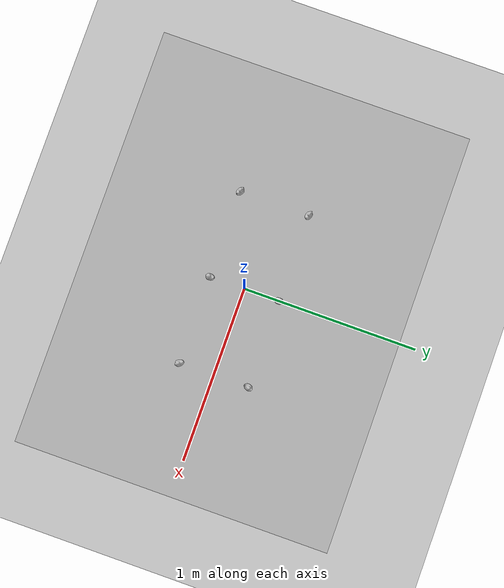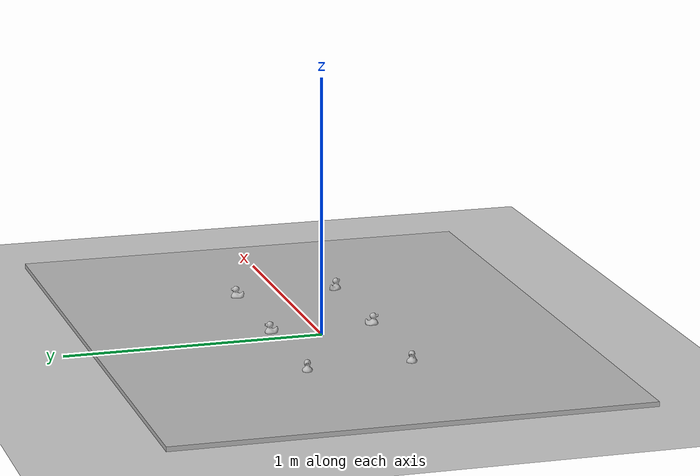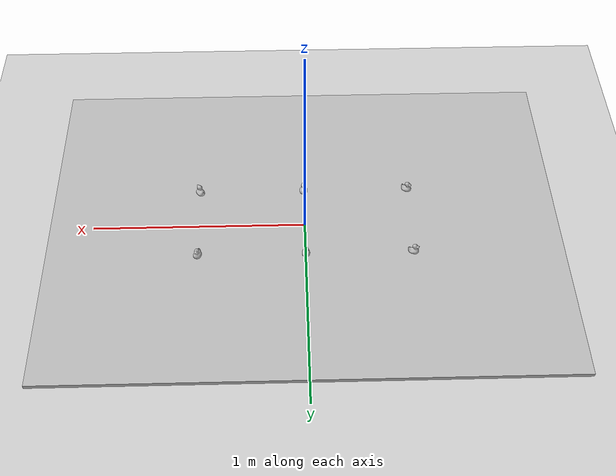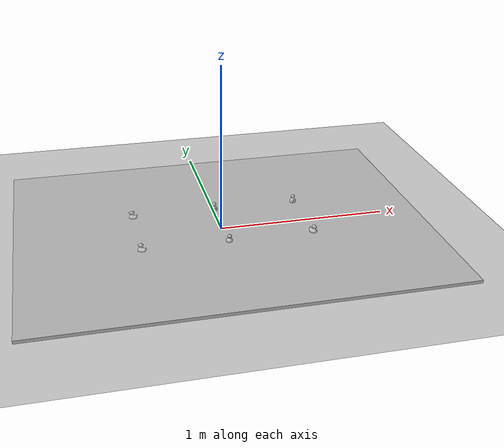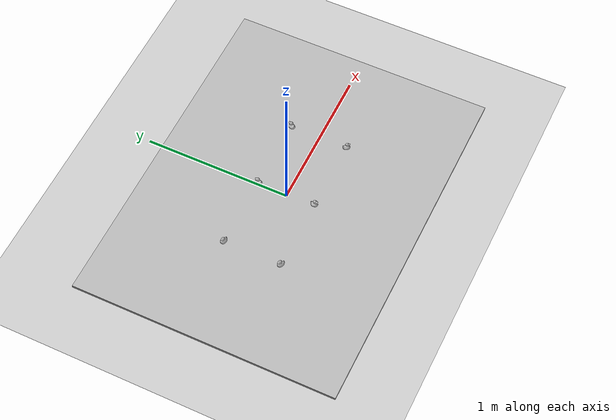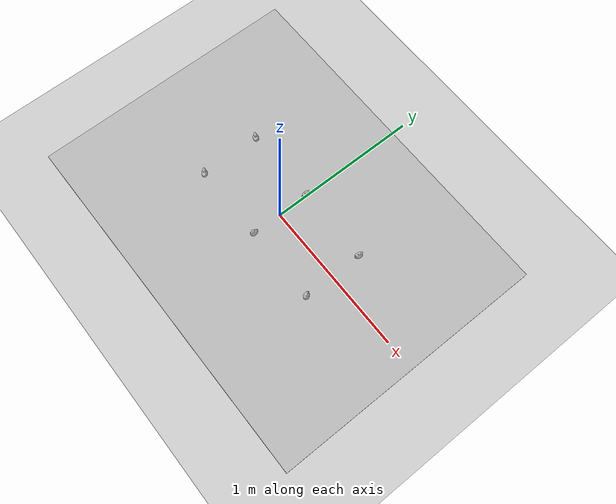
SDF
<sdf version='1.9'>
  <world name='small_loop'>
    <physics name='1ms' type='ignored'>
      <max_step_size>0.001</max_step_size>
      <real_time_factor>1</real_time_factor>
      <real_time_update_rate>1000</real_time_update_rate>
      <dart>
        <collision_detector>bullet</collision_detector> <!-- this is required to solve https://github.com/gazebosim/gz-sim/issues/880 -->
      </dart>
    </physics>
    <plugin name='gz::sim::systems::Physics' filename='gz-sim-physics-system'/>
    <plugin name='gz::sim::systems::UserCommands' filename='gz-sim-user-commands-system'/>
    <plugin name='gz::sim::systems::SceneBroadcaster' filename='gz-sim-scene-broadcaster-system'/>
    <plugin name='gz::sim::systems::Contact' filename='gz-sim-contact-system'/>
    <gravity>0 0 -9.8</gravity>
    <magnetic_field>6e-06 2.3e-05 -4.2e-05</magnetic_field>
    <atmosphere type='adiabatic'/>
    <scene>
      <ambient>0.4 0.4 0.4 1</ambient>
      <background>0.7 0.7 0.7 1</background>
      <shadows>true</shadows>
      <sky>
        <time>12</time>
        <sunrise>6</sunrise>
        <sunset>18</sunset>
      </sky>
    </scene>
    <model name='ground_plane'>
      <static>true</static>
      <link name='link'>
        <collision name='collision'>
          <geometry>
            <plane>
              <normal>0 0 1</normal>
              <size>100 100</size>
            </plane>
          </geometry>
          <surface>
            <friction>
              <ode/>
            </friction>
            <bounce/>
            <contact/>
          </surface>
        </collision>
        <visual name='visual'>
          <geometry>
            <plane>
              <normal>0 0 1</normal>
              <size>100 100</size>
            </plane>
          </geometry>
          <material>
            <ambient>0.8 0.8 0.8 1</ambient>
            <diffuse>0.8 0.8 0.8 1</diffuse>
            <specular>0.8 0.8 0.8 1</specular>
          </material>
        </visual>
        <pose>0 0 0 0 -0 0</pose>
        <inertial>
          <pose>0 0 0 0 -0 0</pose>
          <mass>1</mass>
          <inertia>
            <ixx>1</ixx>
            <ixy>0</ixy>
            <ixz>0</ixz>
            <iyy>1</iyy>
            <iyz>0</iyz>
            <izz>1</izz>
          </inertia>
        </inertial>
        <enable_wind>false</enable_wind>
      </link>
      <pose>0 0 0 0 -0 0</pose>
      <self_collide>false</self_collide>
    </model>

    <include>
      <name>small_loop</name>
      <uri>
        package://foxy_gz/assets/small_loop/small_loop.sdf
      </uri>
      <pose>0 0 0.018 0 0 0</pose>
    </include>

    <include>
      <name>duck0</name>
      <uri>
        package://foxy_gz/assets/duck/duck.sdf
      </uri>
      <pose>0.0000 0.2 0.018 0 0 3.14</pose>
    </include>
    <include>
      <name>duck0_r</name>
      <uri>
        package://foxy_gz/assets/duck/duck.sdf
      </uri>
      <pose>0.0 -0.2 0.018 0 0 0</pose>
    </include>

    <include>
      <name>duck1</name>
      <uri>
        package://foxy_gz/assets/duck/duck.sdf
      </uri>
      <pose>0.5 0.2 0.018 0 0 2.87</pose>
    </include>
    <include>
      <name>duck1_r</name>
      <uri>
        package://foxy_gz/assets/duck/duck.sdf
      </uri>
      <pose>0.5 -0.2 0.018 0 0 0.57</pose>
    </include>

    <include>
      <name>duck2</name>
      <uri>
        package://foxy_gz/assets/duck/duck.sdf
      </uri>
      <pose>-0.5 0.2 0.018 0 0 -1.87</pose>
    </include>
    <include>
      <name>duck2_r</name>
      <uri>
        package://foxy_gz/assets/duck/duck.sdf
      </uri>
      <pose>-0.5 -0.20 0.018 0 0 -2.1</pose>
    </include>

    <light name='sun' type='directional'>
      <pose>0 0 10 0 -0 0</pose>
      <cast_shadows>true</cast_shadows>
      <intensity>1</intensity>
      <direction>-0.5 0.1 -0.9</direction>
      <diffuse>0.8 0.8 0.8 1</diffuse>
      <specular>0.2 0.2 0.2 1</specular>
      <attenuation>
        <range>1000</range>
        <linear>0.01</linear>
        <constant>0.90000000000000002</constant>
        <quadratic>0.001</quadratic>
      </attenuation>
      <spot>
        <inner_angle>0</inner_angle>
        <outer_angle>0</outer_angle>
        <falloff>0</falloff>
      </spot>
    </light>
  </world>
</sdf>

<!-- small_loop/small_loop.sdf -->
<sdf version="1.6">
  <model name="small_loop">
    <static>true</static>
    <link name="link">
      <visual name="visual">
        <geometry>
          <mesh>
            <uri>model://foxy_gz/assets/small_loop/small_loop.dae</uri>
          </mesh>
        </geometry>
      </visual>
      <collision name="collision">
        <geometry>
          <box>
            <size>2.4 1.8 0.018</size>
          </box>
        </geometry>
      </collision>
    </link>
  </model>
</sdf>

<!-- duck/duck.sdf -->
<sdf version="1.6">
  <model name="duck">
    <static>true</static>
    <link name="link">
      <visual name="visual">
        <geometry>
          <mesh>
            <uri>model://foxy_gz/assets/duck/duck.dae</uri>
          </mesh>
        </geometry>
      </visual>
      <collision name="collision">
        <pose>0 0 0.026 0 0 0</pose>
        <geometry>
          <box>
            <size>0.052 0.052 0.052</size>
          </box>
        </geometry>
      </collision>
    </link>
  </model>
</sdf>
